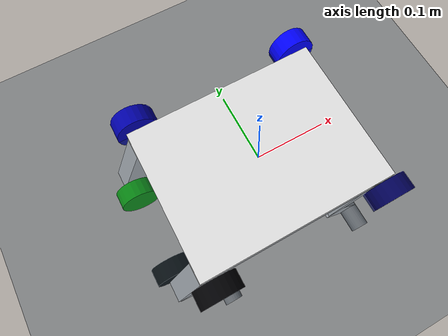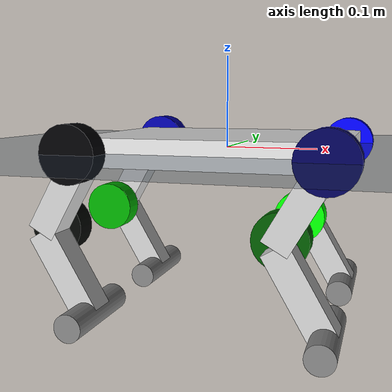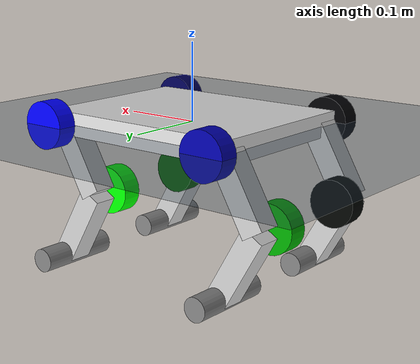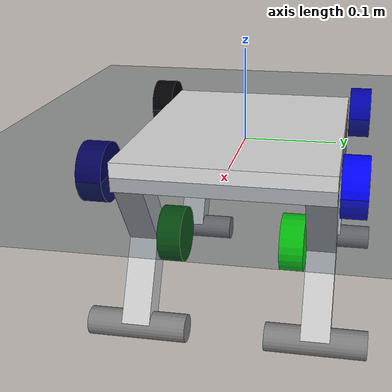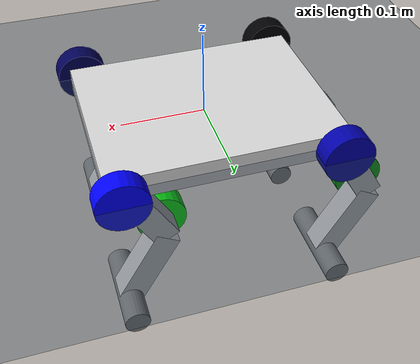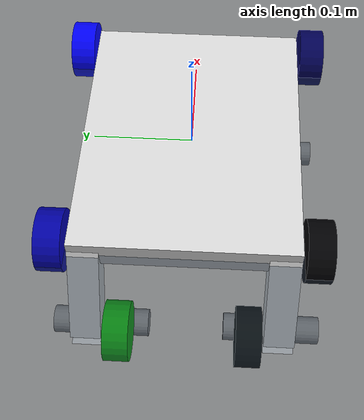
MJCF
<?xml version="1.0" ?>
<!-- |    This document was autogenerated by xacro from doq.xacro                      | -->
<!-- |    EDITING THIS FILE BY HAND IS NOT RECOMMENDED                                 | -->
<mujoco model="twist">
  <!-- XACRO PARAMETERS -->
  <!-- rando stuff -->
  <!-- Body parameters -->
  <!--INERTIA PROB TOO HIGH, maybe make this a pointish mass-->
  <!-- but is it tho -->
  <!-- update -->
  <!-- but is it tho -->
  <!--GTT: Grand Theft Toe-->
  <!-- XACRO MACROS -->
  <compiler angle="radian" autolimits="true"/>
  <option gravity="0 0 -9.81" timestep="0.001">
    <!-- https://github.com/deepmind/mujoco/issues/941 -->
    <flag contact="enable" energy="enable" sensornoise="enable"/>
  </option>
  <default>
    <geom conaffinity="0" contype="4"/>
  </default>
  <asset>
    <texture builtin="gradient" height="512" rgb1="0.3 0.5 0.7" rgb2="0 0 0" type="skybox" width="512"/>
    <texture builtin="checker" height="512" mark="cross" markrgb=".8 .8 .8" name="texplane" rgb1=".2 .3 .4" rgb2=".1 0.15 0.2" type="2d" width="512"/>
    <texture builtin="flat" height="1278" mark="cross" markrgb="1 1 1" name="texgeom" random="0.01" rgb1="0.8 0.6 0.4" rgb2="0.8 0.6 0.4" type="cube" width="127"/>
    <material name="matplane" reflectance="0.3" texrepeat="1 1" texture="texplane" texuniform="true"/>
    <material name="matgeom" rgba="0.8 0.6 .4 1" texture="texgeom" texuniform="true"/>
  </asset>
  <worldbody>
    <geom conaffinity="4" contype="2" material="matplane" name="floor" pos="0 0 0" size="0 0 .25" type="plane"/>
    <light cutoff="100" diffuse="1 1 1" dir="-0 0 -1.3" directional="true" exponent="1" pos="0 0 1.3" specular=".1 .1 .1"/>
    <body name="body">
      <joint name="FLOATING" type="free" />
      <geom mass="0.67" name="kinegamiAndBoards" pos="0 0 0" rgba="0.88 0.88 0.88 1.0" size="0.14 0.109 0.015" type="box"/>
      <!-- front_back_sign:=1 left_right_sign:=1" -->
      <body name="hip_0" pos="0.125 0.094 0.0">
        <geom mass="0.21" name="hip_motor_0" pos="0 0.03 0" quat="0.707107 0.707107 0 0" rgba="0 0 1.0 1" size="0.03 0.0125" type="cylinder"/>
        <body name="thigh_0" pos="0 0 0" quat=" 0.9659258 0 0.258819 0">
          <joint axis="0 1 0" damping="0.02" name="HIP0" pos="0 0 0" range="-1.5707963 1.5707963"/>
          <geom mass="0.015" name="thigh_0" pos="0 0 -0.05" rgba="0.8 0.8 0.8 1" size="0.015 0.015 0.05" type="box"/>
          <geom mass="0.21" name="knee_motor_0" pos="0 -0.03 -0.1" quat="0.707107 0.707107 0 0" rgba="0 1.0 0 1" size="0.03 0.0125" type="cylinder"/>
          <body name="shin_0" pos="0 0 -0.1" quat="0.86603 0 -0.5 0">
            <joint axis="0 1 0" damping="0.02" name="KNEE0" pos="0 0 0" range="-1.5707963 1.5707963"/>
            <geom mass="0.015" name="shin_0" pos="0 0 -0.05" rgba="0.8 0.8 0.8 1" size="0.015 0.015 0.05" type="box"/>
            <geom contype="4" mass="0.03" name="toe_0" pos="0 0 -0.1 " quat="0.707107 0.707107 0 0" rgba="0.5 0.5 0.5 1" size="0.015 0.0525" type="cylinder"/>
          </body>
        </body>
      </body>
      <!-- front_back_sign:=1 left_right_sign:=1" -->
      <body name="hip_1" pos="-0.125 0.094 0.0">
        <geom mass="0.21" name="hip_motor_1" pos="0 0.03 0" quat="0.707107 0.707107 0 0" rgba="0 0 0.6699999999999999 1" size="0.03 0.0125" type="cylinder"/>
        <body name="thigh_1" pos="0 0 0" quat=" 0.9659258 0 0.258819 0">
          <joint axis="0 1 0" damping="0.02" name="HIP1" pos="0 0 0" range="-1.5707963 1.5707963"/>
          <geom mass="0.015" name="thigh_1" pos="0 0 -0.05" rgba="0.8 0.8 0.8 1" size="0.015 0.015 0.05" type="box"/>
          <geom mass="0.21" name="knee_motor_1" pos="0 -0.03 -0.1" quat="0.707107 0.707107 0 0" rgba="0 0.6699999999999999 0 1" size="0.03 0.0125" type="cylinder"/>
          <body name="shin_1" pos="0 0 -0.1" quat="0.86603 0 -0.5 0">
            <joint axis="0 1 0" damping="0.02" name="KNEE1" pos="0 0 0" range="-1.5707963 1.5707963"/>
            <geom mass="0.015" name="shin_1" pos="0 0 -0.05" rgba="0.8 0.8 0.8 1" size="0.015 0.015 0.05" type="box"/>
            <geom contype="4" mass="0.03" name="toe_1" pos="0 0 -0.1 " quat="0.707107 0.707107 0 0" rgba="0.5 0.5 0.5 1" size="0.015 0.0525" type="cylinder"/>
          </body>
        </body>
      </body>
      <!-- front_back_sign:=1 left_right_sign:=1" -->
      <body name="hip_2" pos="0.125 -0.094 0.0">
        <geom mass="0.21" name="hip_motor_2" pos="0 -0.03 0" quat="0.707107 0.707107 0 0" rgba="0 0 0.33999999999999997 1" size="0.03 0.0125" type="cylinder"/>
        <body name="thigh_2" pos="0 0 0" quat=" 0.9659258 0 0.258819 0">
          <joint axis="0 1 0" damping="0.02" name="HIP2" pos="0 0 0" range="-1.5707963 1.5707963"/>
          <geom mass="0.015" name="thigh_2" pos="0 0 -0.05" rgba="0.8 0.8 0.8 1" size="0.015 0.015 0.05" type="box"/>
          <geom mass="0.21" name="knee_motor_2" pos="0 0.03 -0.1" quat="0.707107 0.707107 0 0" rgba="0 0.33999999999999997 0 1" size="0.03 0.0125" type="cylinder"/>
          <body name="shin_2" pos="0 0 -0.1" quat="0.86603 0 -0.5 0">
            <joint axis="0 1 0" damping="0.02" name="KNEE2" pos="0 0 0" range="-1.5707963 1.5707963"/>
            <geom mass="0.015" name="shin_2" pos="0 0 -0.05" rgba="0.8 0.8 0.8 1" size="0.015 0.015 0.05" type="box"/>
            <geom contype="4" mass="0.03" name="toe_2" pos="0 0 -0.1 " quat="0.707107 0.707107 0 0" rgba="0.5 0.5 0.5 1" size="0.015 0.0525" type="cylinder"/>
          </body>
        </body>
      </body>
      <!-- front_back_sign:=1 left_right_sign:=1" -->
      <body name="hip_3" pos="-0.125 -0.094 0.0">
        <geom mass="0.21" name="hip_motor_3" pos="0 -0.03 0" quat="0.707107 0.707107 0 0" rgba="0 0 0.010000000000000009 1" size="0.03 0.0125" type="cylinder"/>
        <body name="thigh_3" pos="0 0 0" quat=" 0.9659258 0 0.258819 0">
          <joint axis="0 1 0" damping="0.02" name="HIP3" pos="0 0 0" range="-1.5707963 1.5707963"/>
          <geom mass="0.015" name="thigh_3" pos="0 0 -0.05" rgba="0.8 0.8 0.8 1" size="0.015 0.015 0.05" type="box"/>
          <geom mass="0.21" name="knee_motor_3" pos="0 0.03 -0.1" quat="0.707107 0.707107 0 0" rgba="0 0.010000000000000009 0 1" size="0.03 0.0125" type="cylinder"/>
          <body name="shin_3" pos="0 0 -0.1" quat="0.86603 0 -0.5 0">
            <joint axis="0 1 0" damping="0.02" name="KNEE3" pos="0 0 0" range="-1.5707963 1.5707963"/>
            <geom mass="0.015" name="shin_3" pos="0 0 -0.05" rgba="0.8 0.8 0.8 1" size="0.015 0.015 0.05" type="box"/>
            <geom contype="4" mass="0.03" name="toe_3" pos="0 0 -0.1 " quat="0.707107 0.707107 0 0" rgba="0.5 0.5 0.5 1" size="0.015 0.0525" type="cylinder"/>
          </body>
        </body>
      </body>
      <site name="IMU" quat="0 0 1 0"/>
      <!-- quat cuz reorienting IMU to match (i think) real life moteus pi3hat imu orientation-->
    </body>
  </worldbody>
  <actuator>
    <general joint="HIP0" name="HIP0_act" forcelimited="true" forcerange="-2 2" ctrlrange="-1 1" gainprm="1000 0 0"/>
    <general joint="KNEE0" name="KNEE0_act" forcelimited="true" forcerange="-2 2" ctrlrange="-1 1" gainprm="1000 0 0"/>
    <general joint="HIP1" name="HIP1_act" forcelimited="true" forcerange="-2 2" ctrlrange="-1 1" gainprm="1000 0 0"/>
    <general joint="KNEE1" name="KNEE1_act" forcelimited="true" forcerange="-2 2" ctrlrange="-1 1" gainprm="1000 0 0"/>
    <general joint="HIP2" name="HIP2_act" forcelimited="true" forcerange="-2 2" ctrlrange="-1 1" gainprm="1000 0 0"/>
    <general joint="KNEE2" name="KNEE2_act" forcelimited="true" forcerange="-2 2" ctrlrange="-1 1" gainprm="1000 0 0"/>
    <general joint="HIP3" name="HIP3_act" forcelimited="true" forcerange="-2 2" ctrlrange="-1 1" gainprm="1000 0 0"/>
    <general joint="KNEE3" name="KNEE3_act" forcelimited="true" forcerange="-2 2" ctrlrange="-1 1" gainprm="1000 0 0"/>
  </actuator>
  <sensor>
    <accelerometer name="ACCEL" site="IMU"/>
    <gyro name="GYRO" site="IMU"/>
    <framequat name="QUAT" objname="IMU" objtype="site"/>
  </sensor>
</mujoco>
